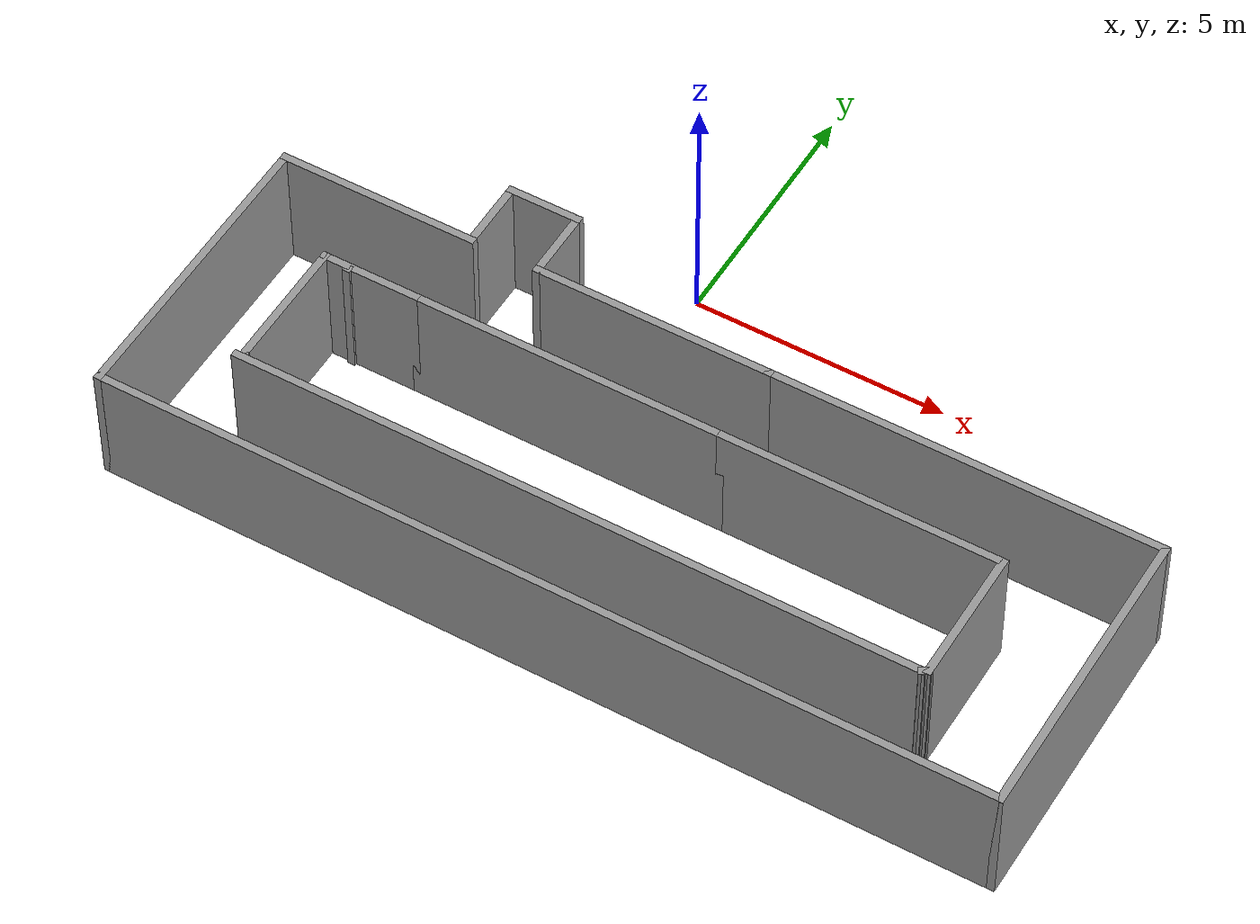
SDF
<?xml version='1.0'?>
<sdf version='1.6'>
  <model name='simple_corridor.world'>
    <pose frame=''>1.755 -4.83 0 0 -0 0</pose>
    <link name='Wall_0'>
      <collision name='Wall_0_Collision'>
        <geometry>
          <box>
            <size>6.25 0.15 2.5</size>
          </box>
        </geometry>
        <pose frame=''>0 0 1.25 0 -0 0</pose>
      </collision>
      <visual name='Wall_0_Visual'>
        <pose frame=''>0 0 1.25 0 -0 0</pose>
        <geometry>
          <box>
            <size>6.25 0.15 2.5</size>
          </box>
        </geometry>
        <material>
          <script>
            <uri>file://media/materials/scripts/gazebo.material</uri>
            <name>Gazebo/Grey</name>
          </script>
          <ambient>1 1 1 1</ambient>
        </material>
        <meta>
          <layer>0</layer>
        </meta>
      </visual>
      <pose frame=''>-1.925 0.650001 0 0 -0 0</pose>
    </link>
    <link name='Wall_11'>
      <collision name='Wall_11_Collision'>
        <geometry>
          <box>
            <size>13.465 0.15 2.5</size>
          </box>
        </geometry>
        <pose frame=''>0 0 1.25 0 -0 0</pose>
      </collision>
      <visual name='Wall_11_Visual'>
        <pose frame=''>0 0 1.25 0 -0 0</pose>
        <geometry>
          <box>
            <size>13.465 0.15 2.5</size>
          </box>
        </geometry>
        <material>
          <script>
            <uri>file://media/materials/scripts/gazebo.material</uri>
            <name>Gazebo/Grey</name>
          </script>
          <ambient>1 1 1 1</ambient>
        </material>
        <meta>
          <layer>0</layer>
        </meta>
      </visual>
      <pose frame=''>-0.26749 -2 0 0 -0 3.14159</pose>
    </link>
    <link name='Wall_14'>
      <collision name='Wall_14_Collision'>
        <geometry>
          <box>
            <size>0.15 0.15 2.5</size>
          </box>
        </geometry>
        <pose frame=''>0 0 1.25 0 -0 0</pose>
      </collision>
      <visual name='Wall_14_Visual'>
        <pose frame=''>0 0 1.25 0 -0 0</pose>
        <geometry>
          <box>
            <size>0.15 0.15 2.5</size>
          </box>
        </geometry>
        <material>
          <script>
            <uri>file://media/materials/scripts/gazebo.material</uri>
            <name>Gazebo/Grey</name>
          </script>
          <ambient>1 1 1 1</ambient>
        </material>
        <meta>
          <layer>0</layer>
        </meta>
      </visual>
      <pose frame=''>-6.325 0.6 0 0 -0 0</pose>
    </link>
    <link name='Wall_16'>
      <collision name='Wall_16_Collision'>
        <geometry>
          <box>
            <size>2 0.15 2.5</size>
          </box>
        </geometry>
        <pose frame=''>0 0 1.25 0 -0 0</pose>
      </collision>
      <visual name='Wall_16_Visual'>
        <pose frame=''>0 0 1.25 0 -0 0</pose>
        <geometry>
          <box>
            <size>2 0.15 2.5</size>
          </box>
        </geometry>
        <material>
          <script>
            <uri>file://media/materials/scripts/gazebo.material</uri>
            <name>Gazebo/Grey</name>
          </script>
          <ambient>1 1 1 1</ambient>
        </material>
        <meta>
          <layer>0</layer>
        </meta>
      </visual>
      <pose frame=''>-5.9 0.650001 0 0 -0 3.14159</pose>
    </link>
    <link name='Wall_17'>
      <collision name='Wall_17_Collision'>
        <geometry>
          <box>
            <size>2.75 0.15 2.5</size>
          </box>
        </geometry>
        <pose frame=''>0 0 1.25 0 -0 0</pose>
      </collision>
      <visual name='Wall_17_Visual'>
        <pose frame=''>0 0 1.25 0 -0 0</pose>
        <geometry>
          <box>
            <size>2.75 0.15 2.5</size>
          </box>
        </geometry>
        <material>
          <script>
            <uri>file://media/materials/scripts/gazebo.material</uri>
            <name>Gazebo/Grey</name>
          </script>
          <ambient>1 1 1 1</ambient>
        </material>
        <meta>
          <layer>0</layer>
        </meta>
      </visual>
      <pose frame=''>-6.825 -0.65 0 0 -0 -1.5708</pose>
    </link>
    <link name='Wall_18'>
      <collision name='Wall_18_Collision'>
        <geometry>
          <box>
            <size>0.15 0.15 2.5</size>
          </box>
        </geometry>
        <pose frame=''>0 0 1.25 0 -0 0</pose>
      </collision>
      <visual name='Wall_18_Visual'>
        <pose frame=''>0 0 1.25 0 -0 0</pose>
        <geometry>
          <box>
            <size>0.15 0.15 2.5</size>
          </box>
        </geometry>
        <material>
          <script>
            <uri>file://media/materials/scripts/gazebo.material</uri>
            <name>Gazebo/Grey</name>
          </script>
          <ambient>1 1 1 1</ambient>
        </material>
        <meta>
          <layer>0</layer>
        </meta>
      </visual>
      <pose frame=''>-6.825 -1.95 0 0 -0 0</pose>
    </link>
    <link name='Wall_2'>
      <collision name='Wall_2_Collision'>
        <geometry>
          <box>
            <size>4.75 0.15 2.5</size>
          </box>
        </geometry>
        <pose frame=''>0 0 1.25 0 -0 0</pose>
      </collision>
      <visual name='Wall_2_Visual'>
        <pose frame=''>0 0 1.25 0 -0 0</pose>
        <geometry>
          <box>
            <size>4.75 0.15 2.5</size>
          </box>
        </geometry>
        <material>
          <script>
            <uri>file://media/materials/scripts/gazebo.material</uri>
            <name>Gazebo/Grey</name>
          </script>
          <ambient>1 1 1 1</ambient>
        </material>
        <meta>
          <layer>0</layer>
        </meta>
      </visual>
      <pose frame=''>-1.175 2.25 0 0 -0 3.14159</pose>
    </link>
    <link name='Wall_20'>
      <collision name='Wall_20_Collision'>
        <geometry>
          <box>
            <size>6 0.15 2.5</size>
          </box>
        </geometry>
        <pose frame=''>0 0 1.25 0 -0 0</pose>
      </collision>
      <visual name='Wall_20_Visual'>
        <pose frame=''>0 0 1.25 0 -0 0</pose>
        <geometry>
          <box>
            <size>6 0.15 2.5</size>
          </box>
        </geometry>
        <material>
          <script>
            <uri>file://media/materials/scripts/gazebo.material</uri>
            <name>Gazebo/Grey</name>
          </script>
          <ambient>1 1 1 1</ambient>
        </material>
        <meta>
          <layer>0</layer>
        </meta>
      </visual>
      <pose frame=''>8.675 -0.675 0 0 -0 1.5708</pose>
    </link>
    <link name='Wall_21'>
      <collision name='Wall_21_Collision'>
        <geometry>
          <box>
            <size>7.7 0.15 2.5</size>
          </box>
        </geometry>
        <pose frame=''>0 0 1.25 0 -0 0</pose>
      </collision>
      <visual name='Wall_21_Visual'>
        <pose frame=''>0 0 1.25 0 -0 0</pose>
        <geometry>
          <box>
            <size>7.7 0.15 2.5</size>
          </box>
        </geometry>
        <material>
          <script>
            <uri>file://media/materials/scripts/gazebo.material</uri>
            <name>Gazebo/Grey</name>
          </script>
          <ambient>1 1 1 1</ambient>
        </material>
        <meta>
          <layer>0</layer>
        </meta>
      </visual>
      <pose frame=''>4.9 2.25 0 0 -0 3.14159</pose>
    </link>
    <link name='Wall_22'>
      <collision name='Wall_22_Collision'>
        <geometry>
          <box>
            <size>0.15 0.15 2.5</size>
          </box>
        </geometry>
        <pose frame=''>0 0 1.25 0 -0 0</pose>
      </collision>
      <visual name='Wall_22_Visual'>
        <pose frame=''>0 0 1.25 0 -0 0</pose>
        <geometry>
          <box>
            <size>0.15 0.15 2.5</size>
          </box>
        </geometry>
        <material>
          <script>
            <uri>file://media/materials/scripts/gazebo.material</uri>
            <name>Gazebo/Grey</name>
          </script>
          <ambient>1 1 1 1</ambient>
        </material>
        <meta>
          <layer>0</layer>
        </meta>
      </visual>
      <pose frame=''>1.125 2.25 0 0 -0 0</pose>
    </link>
    <link name='Wall_24'>
      <collision name='Wall_24_Collision'>
        <geometry>
          <box>
            <size>5.5 0.15 2.5</size>
          </box>
        </geometry>
        <pose frame=''>0 0 1.25 0 -0 0</pose>
      </collision>
      <visual name='Wall_24_Visual'>
        <pose frame=''>0 0 1.25 0 -0 0</pose>
        <geometry>
          <box>
            <size>5.5 0.15 2.5</size>
          </box>
        </geometry>
        <material>
          <script>
            <uri>file://media/materials/scripts/gazebo.material</uri>
            <name>Gazebo/Grey</name>
          </script>
          <ambient>1 1 1 1</ambient>
        </material>
        <meta>
          <layer>0</layer>
        </meta>
      </visual>
      <pose frame=''>3.8 0.650001 0 0 -0 0</pose>
    </link>
    <link name='Wall_25'>
      <collision name='Wall_25_Collision'>
        <geometry>
          <box>
            <size>2.75 0.15 2.5</size>
          </box>
        </geometry>
        <pose frame=''>0 0 1.25 0 -0 0</pose>
      </collision>
      <visual name='Wall_25_Visual'>
        <pose frame=''>0 0 1.25 0 -0 0</pose>
        <geometry>
          <box>
            <size>2.75 0.15 2.5</size>
          </box>
        </geometry>
        <material>
          <script>
            <uri>file://media/materials/scripts/gazebo.material</uri>
            <name>Gazebo/Grey</name>
          </script>
          <ambient>1 1 1 1</ambient>
        </material>
        <meta>
          <layer>0</layer>
        </meta>
      </visual>
      <pose frame=''>6.475 -0.65 0 0 -0 -1.5708</pose>
    </link>
    <link name='Wall_26'>
      <collision name='Wall_26_Collision'>
        <geometry>
          <box>
            <size>0.248598 0.15 2.5</size>
          </box>
        </geometry>
        <pose frame=''>0 0 1.25 0 -0 0</pose>
      </collision>
      <visual name='Wall_26_Visual'>
        <pose frame=''>0 0 1.25 0 -0 0</pose>
        <geometry>
          <box>
            <size>0.248598 0.15 2.5</size>
          </box>
        </geometry>
        <material>
          <script>
            <uri>file://media/materials/scripts/gazebo.material</uri>
            <name>Gazebo/Grey</name>
          </script>
          <ambient>1 1 1 1</ambient>
        </material>
        <meta>
          <layer>0</layer>
        </meta>
      </visual>
      <pose frame=''>6.43251 -1.975 0 0 -0 -2.60977</pose>
    </link>
    <link name='Wall_3'>
      <collision name='Wall_3_Collision'>
        <geometry>
          <box>
            <size>1.5 0.15 2.5</size>
          </box>
        </geometry>
        <pose frame=''>0 0 1.25 0 -0 0</pose>
      </collision>
      <visual name='Wall_3_Visual'>
        <pose frame=''>0 0 1.25 0 -0 0</pose>
        <geometry>
          <box>
            <size>1.5 0.15 2.5</size>
          </box>
        </geometry>
        <material>
          <script>
            <uri>file://media/materials/scripts/gazebo.material</uri>
            <name>Gazebo/Grey</name>
          </script>
          <ambient>1 1 1 1</ambient>
        </material>
        <meta>
          <layer>0</layer>
        </meta>
      </visual>
      <pose frame=''>-3.475 2.925 0 0 -0 1.5708</pose>
    </link>
    <link name='Wall_4'>
      <collision name='Wall_4_Collision'>
        <geometry>
          <box>
            <size>1.5 0.15 2.5</size>
          </box>
        </geometry>
        <pose frame=''>0 0 1.25 0 -0 0</pose>
      </collision>
      <visual name='Wall_4_Visual'>
        <pose frame=''>0 0 1.25 0 -0 0</pose>
        <geometry>
          <box>
            <size>1.5 0.15 2.5</size>
          </box>
        </geometry>
        <material>
          <script>
            <uri>file://media/materials/scripts/gazebo.material</uri>
            <name>Gazebo/Grey</name>
          </script>
          <ambient>1 1 1 1</ambient>
        </material>
        <meta>
          <layer>0</layer>
        </meta>
      </visual>
      <pose frame=''>-4.15 3.6 0 0 -0 3.14159</pose>
    </link>
    <link name='Wall_5'>
      <collision name='Wall_5_Collision'>
        <geometry>
          <box>
            <size>1.5 0.15 2.5</size>
          </box>
        </geometry>
        <pose frame=''>0 0 1.25 0 -0 0</pose>
      </collision>
      <visual name='Wall_5_Visual'>
        <pose frame=''>0 0 1.25 0 -0 0</pose>
        <geometry>
          <box>
            <size>1.5 0.15 2.5</size>
          </box>
        </geometry>
        <material>
          <script>
            <uri>file://media/materials/scripts/gazebo.material</uri>
            <name>Gazebo/Grey</name>
          </script>
          <ambient>1 1 1 1</ambient>
        </material>
        <meta>
          <layer>0</layer>
        </meta>
      </visual>
      <pose frame=''>-4.825 2.925 0 0 -0 -1.5708</pose>
    </link>
    <link name='Wall_6'>
      <collision name='Wall_6_Collision'>
        <geometry>
          <box>
            <size>4 0.15 2.5</size>
          </box>
        </geometry>
        <pose frame=''>0 0 1.25 0 -0 0</pose>
      </collision>
      <visual name='Wall_6_Visual'>
        <pose frame=''>0 0 1.25 0 -0 0</pose>
        <geometry>
          <box>
            <size>4 0.15 2.5</size>
          </box>
        </geometry>
        <material>
          <script>
            <uri>file://media/materials/scripts/gazebo.material</uri>
            <name>Gazebo/Grey</name>
          </script>
          <ambient>1 1 1 1</ambient>
        </material>
        <meta>
          <layer>0</layer>
        </meta>
      </visual>
      <pose frame=''>-6.75 2.25 0 0 -0 3.14159</pose>
    </link>
    <link name='Wall_8'>
      <collision name='Wall_8_Collision'>
        <geometry>
          <box>
            <size>6 0.15 2.5</size>
          </box>
        </geometry>
        <pose frame=''>0 0 1.25 0 -0 0</pose>
      </collision>
      <visual name='Wall_8_Visual'>
        <pose frame=''>0 0 1.25 0 -0 0</pose>
        <geometry>
          <box>
            <size>6 0.15 2.5</size>
          </box>
        </geometry>
        <material>
          <script>
            <uri>file://media/materials/scripts/gazebo.material</uri>
            <name>Gazebo/Grey</name>
          </script>
          <ambient>1 1 1 1</ambient>
        </material>
        <meta>
          <layer>0</layer>
        </meta>
      </visual>
      <pose frame=''>-8.675 -0.675 0 0 -0 -1.5708</pose>
    </link>
    <link name='Wall_9'>
      <collision name='Wall_9_Collision'>
        <geometry>
          <box>
            <size>17.5 0.15 2.5</size>
          </box>
        </geometry>
        <pose frame=''>0 0 1.25 0 -0 0</pose>
      </collision>
      <visual name='Wall_9_Visual'>
        <pose frame=''>0 0 1.25 0 -0 0</pose>
        <geometry>
          <box>
            <size>17.5 0.15 2.5</size>
          </box>
        </geometry>
        <material>
          <script>
            <uri>file://media/materials/scripts/gazebo.material</uri>
            <name>Gazebo/Grey</name>
          </script>
          <ambient>1 1 1 1</ambient>
        </material>
        <meta>
          <layer>0</layer>
        </meta>
      </visual>
      <pose frame=''>-0 -3.6 0 0 -0 0</pose>
    </link>
    <static>1</static>
  </model>
</sdf>
